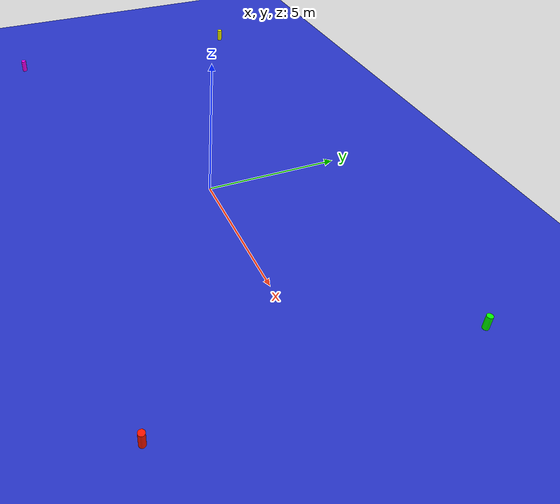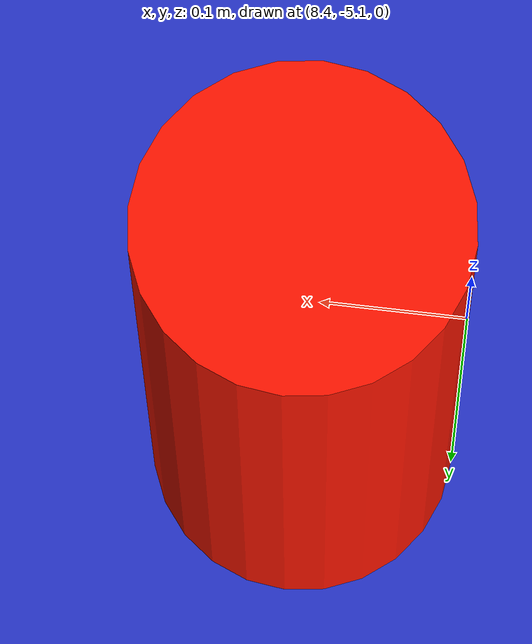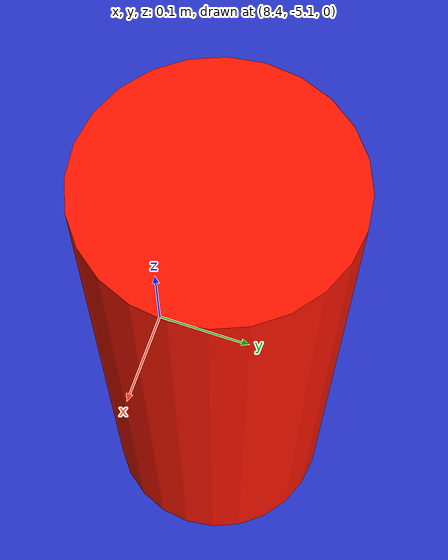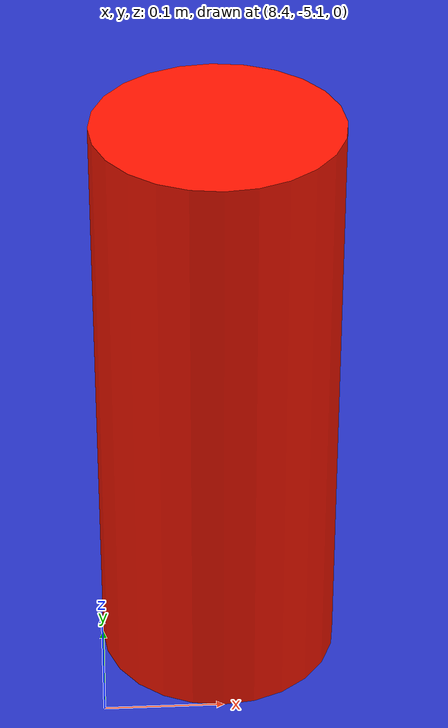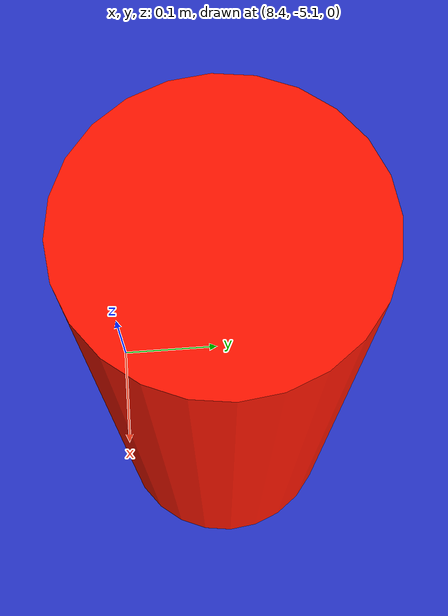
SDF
<?xml version="1.0" ?>
<sdf version='1.7'>
  <world name='default'>
    <light name='sun' type='directional'>
      <cast_shadows>1</cast_shadows>
      <pose>0 0 10 0 -0 0</pose>
      <diffuse>0.8 0.8 0.8 1</diffuse>
      <specular>0.2 0.2 0.2 1</specular>
      <attenuation>
        <range>1000</range>
        <constant>0.9</constant>
        <linear>0.01</linear>
        <quadratic>0.001</quadratic>
      </attenuation>
      <direction>-0.5 0.1 -0.9</direction>
      <spot>
        <inner_angle>0</inner_angle>
        <outer_angle>0</outer_angle>
        <falloff>0</falloff>
      </spot>
    </light>
    <include>
      <uri>model://blue_ground_plane</uri>
    </include>
    <gravity>0 0 -9.8</gravity>
    <magnetic_field>6e-06 2.3e-05 -4.2e-05</magnetic_field>
    <atmosphere type='adiabatic'/>
    <physics type='ode'>
      <max_step_size>0.002</max_step_size>
      <real_time_factor>1</real_time_factor>
      <real_time_update_rate>500</real_time_update_rate>
    </physics>
    <scene>
      <ambient>0.4 0.4 0.4 1</ambient>
      <background>0.7 0.7 0.7 1</background>
      <shadows>1</shadows>
    </scene>
    <wind/>
    <spherical_coordinates>
      <surface_model>EARTH_WGS84</surface_model>
      <latitude_deg>0</latitude_deg>
      <longitude_deg>0</longitude_deg>
      <elevation>0</elevation>
      <heading_deg>0</heading_deg>
    </spherical_coordinates>
    <include>
      <name>landmark_1</name>
      <uri>model://red_landmark</uri>
      <pose>8.5 -5 0.25 0 0 0</pose>
    </include>
    <include>
      <name>landmark_2</name>
      <uri>model://green_landmark</uri>
      <pose>8.5 5 0.25 0 0 0</pose>
    </include>
    <include>
      <name>landmark_3</name>
      <uri>model://yellow_landmark</uri>
      <pose>-11.5 5 0.25 0 0 0</pose>
    </include>
    <include>
      <name>landmark_4</name>
      <uri>model://magenta_landmark</uri>
      <pose>-11.5 -5 0.25 0 0 0</pose>
    </include>
    <gui fullscreen='0'>
      <camera name='user_camera'>
        <pose>-6.71 3.52 4.23 0 0.45 -0.42</pose>
        <view_controller>orbit</view_controller>
        <projection_type>perspective</projection_type>
      </camera>
    </gui>
  </world>
</sdf>

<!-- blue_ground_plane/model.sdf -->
<sdf version="1.5">
  <model name="blue_ground_plane">
    <static>true</static>
    <link name="link">
      <collision name="collision">
        <geometry>
          <plane>
            <normal>0 0 1</normal>
            <size>100 100</size>
          </plane>
        </geometry>
        <surface>
          <friction>
            <ode>
              <mu>100</mu>
              <mu2>50</mu2>
            </ode>
          </friction>
        </surface>
      </collision>
      <visual name="visual">
        <cast_shadows>false</cast_shadows>
        <geometry>
          <plane>
            <normal>0 0 1</normal>
            <size>100 100</size>
          </plane>
        </geometry>
	<material>
	  <ambient>0.15 0.2 0.78 1</ambient>
	  <diffuse>0.15 0.2 0.78 1</diffuse>
	  <specular>0.15 0.2 0.78 1</specular>
	</material>
      </visual>
    </link>
  </model>
</sdf>

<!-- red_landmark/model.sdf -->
<sdf version="1.7">
  <model name="red_landmark">
    <static>true</static>
    <link name="link">
      <collision name="collision">
	<geometry>
          <cylinder>
            <radius>0.1</radius>
	    <height>1</height>
          </cylinder>
	</geometry>
      </collision>
      <visual name="visual">
        <cast_shadows>true</cast_shadows>
        <geometry>
          <cylinder>
            <radius>0.1</radius>
	    <length>0.5</length>
          </cylinder>
        </geometry>
	<material>
	  <ambient>1 0.08 0.0 1</ambient>
	  <diffuse>1 0.08 0.0 1</diffuse>
	  <specular>1 0.08 0.0 1</specular>
	</material>
      </visual>
    </link>
  </model>
</sdf>

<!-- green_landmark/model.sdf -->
<sdf version="1.7">
  <model name="green_landmark">
    <static>true</static>
    <link name="link">
      <collision name="collision">
	<geometry>
          <cylinder>
            <radius>0.1</radius>
	    <height>1</height>
          </cylinder>
	</geometry>
      </collision>
      <visual name="visual">
        <cast_shadows>true</cast_shadows>
        <geometry>
          <cylinder>
            <radius>0.1</radius>
	    <length>0.5</length>
          </cylinder>
        </geometry>
	<material>
	  <ambient>0.0 1 0.0 1</ambient>
	  <diffuse>0.0 1 0.0 1</diffuse>
	  <specular>0.0 1 0.0 1</specular>
	</material>
      </visual>
    </link>
  </model>
</sdf>

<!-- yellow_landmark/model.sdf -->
<sdf version="1.7">
  <model name="red_landmark">
    <static>true</static>
    <link name="link">
      <collision name="collision">
	<geometry>
          <cylinder>
            <radius>0.1</radius>
	    <height>1</height>
          </cylinder>
	</geometry>
      </collision>
      <visual name="visual">
        <cast_shadows>true</cast_shadows>
        <geometry>
          <cylinder>
            <radius>0.1</radius>
	    <length>0.5</length>
          </cylinder>
        </geometry>
	<material>
	  <ambient>1 1 0.0 1</ambient>
	  <diffuse>1 1 0.0 1</diffuse>
	  <specular>1 1 0.0 1</specular>
	</material>
      </visual>
    </link>
  </model>
</sdf>

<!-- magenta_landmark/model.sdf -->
<sdf version="1.7">
  <model name="red_landmark">
    <static>true</static>
    <link name="link">
      <collision name="collision">
	<geometry>
          <cylinder>
            <radius>0.1</radius>
	    <height>1</height>
          </cylinder>
	</geometry>
      </collision>
      <visual name="visual">
        <cast_shadows>true</cast_shadows>
        <geometry>
          <cylinder>
            <radius>0.1</radius>
	    <length>0.5</length>
          </cylinder>
        </geometry>
	<material>
	  <ambient>1 0 1 1</ambient>
	  <diffuse>1 0 1 1</diffuse>
	  <specular>1 0 1 1</specular>
	</material>
      </visual>
    </link>
  </model>
</sdf>
